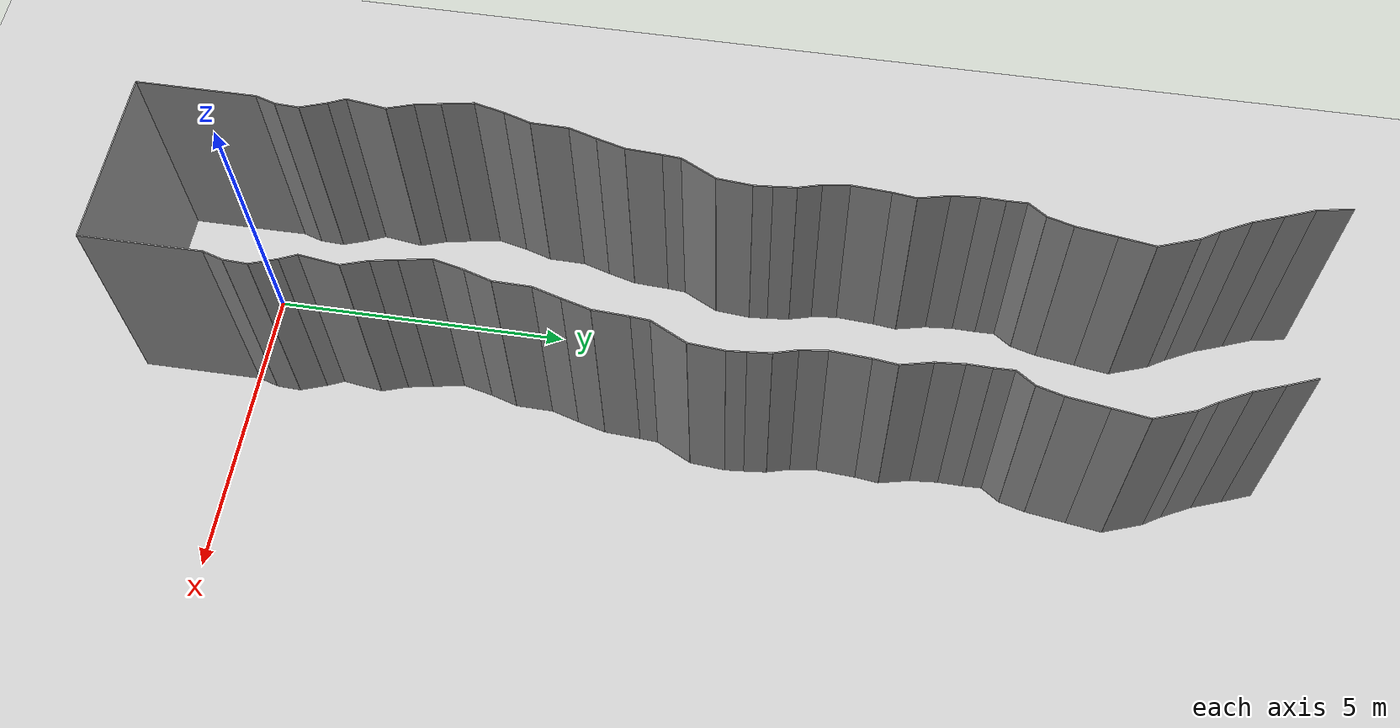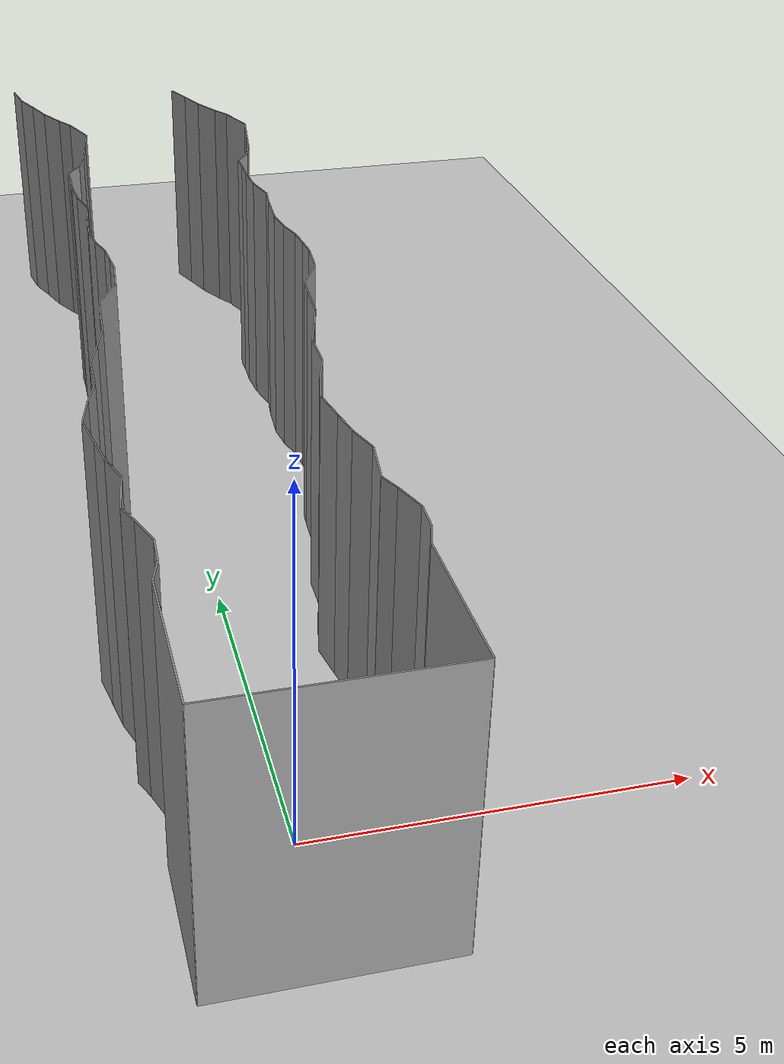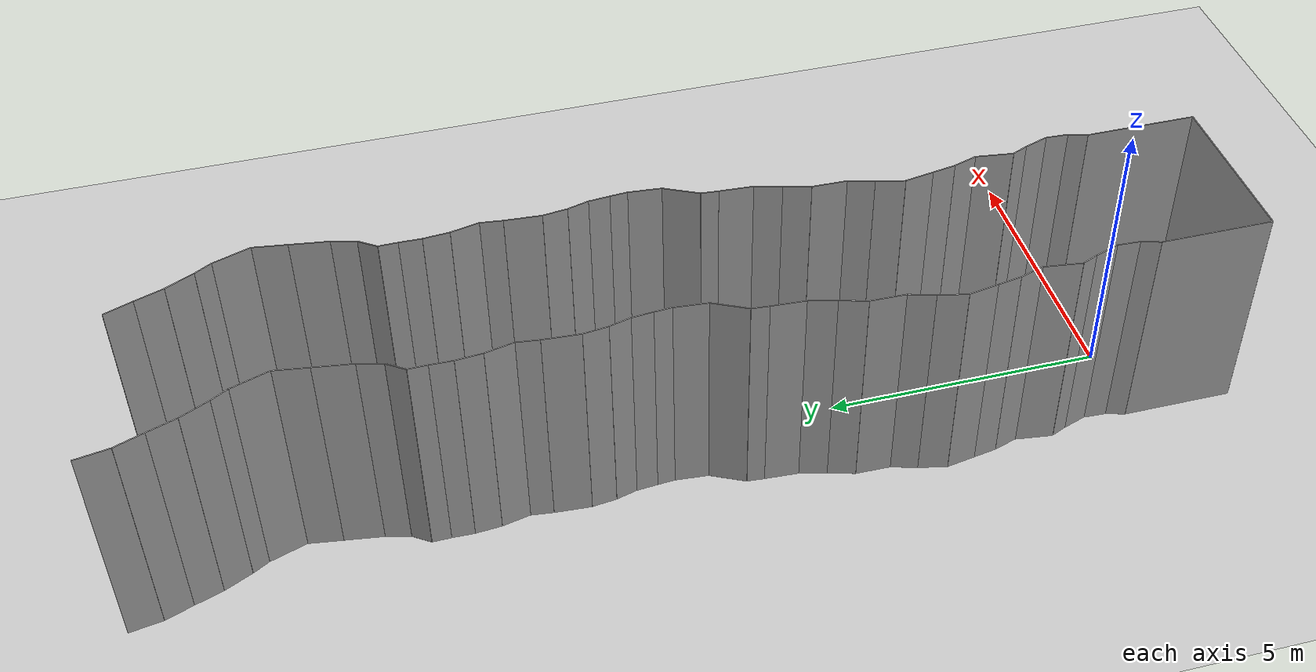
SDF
<sdf version="1.6">
 <world name="default">
  <model name="ground_plane">
   <static>1</static>
   <link name="link">
    <collision name="collision">
     <geometry><plane><normal>0 0 1</normal><size>200 200</size></plane></geometry>
     <surface><friction><ode><mu>100</mu><mu2>50</mu2></ode></friction></surface>
    </collision>
    <visual name="visual">
     <cast_shadows>0</cast_shadows>
     <geometry><plane><normal>0 0 1</normal><size>200 200</size></plane></geometry>
     <material>
      <script><uri>file://media/materials/scripts/gazebo.material</uri><name>Gazebo/Grey</name></script>
     </material>
    </visual>
   </link>
   <pose>0 100 0 0 -0 0</pose>
  </model>
  <model name="wall_back">
   <static>1</static>
   <pose>0.0 -2 2 0.0 0 0.0</pose>
   <link name="link">
    <collision name="collision"><geometry><box><size>3 0.02 4</size></box></geometry></collision>
    <visual name="visual">
     <material>
      <script><name>Gazebo/Grey</name><uri>file://media/materials/scripts/gazebo.material</uri></script>
     </material>
     <geometry><box><size>3 0.02 4</size></box></geometry>
    </visual>
   </link>
  </model>
  <model name="wall_left">
   <static>1</static>
   <pose>1.5 -1 2 0 0 0.00</pose>
   <link name="link">
    <collision name="collision"><geometry><box><size>0.02 2 4</size></box></geometry></collision>
    <visual name="visual">
     <material>
      <script><name>Gazebo/Grey</name><uri>file://media/materials/scripts/gazebo.material</uri></script>
     </material>
     <geometry><box><size>0.02 2 4</size></box></geometry>
    </visual>
   </link>
  </model>
  <model name="wall_right">
   <static>1</static>
   <pose>-1.5 -1 2 0 0 0.00</pose>
   <link name="link">
    <collision name="collision"><geometry><box><size>0.02 2 4</size></box></geometry></collision>
    <visual name="visual">
     <material>
      <script><name>Gazebo/Grey</name><uri>file://media/materials/scripts/gazebo.material</uri></script>
     </material>
     <geometry><box><size>0.02 2 4</size></box></geometry>
    </visual>
   </link>
  </model>
  <model name="wall_0">
   <static>1</static>
   <pose>-1.4481622839149968 0.16780448735554085 2 0 0 -0.2996176306300844</pose>
   <link name="link">
    <collision name="collision"><geometry><box><size>0.02 0.351257710438 4</size></box></geometry></collision>
    <visual name="visual">
     <material>
      <script><name>Gazebo/Grey</name><uri>file://media/materials/scripts/gazebo.material</uri></script>
     </material>
     <geometry><box><size>0.02 0.351257710438 4</size></box></geometry>
    </visual>
   </link>
  </model>
  <model name="wall_1">
   <static>1</static>
   <pose>1.5518377160850032 0.16780448735554085 2 0 0 -0.2996176306300844</pose>
   <link name="link">
    <collision name="collision"><geometry><box><size>0.02 0.351257710438 4</size></box></geometry></collision>
    <visual name="visual">
     <material>
      <script><name>Gazebo/Grey</name><uri>file://media/materials/scripts/gazebo.material</uri></script>
     </material>
     <geometry><box><size>0.02 0.351257710438 4</size></box></geometry>
    </visual>
   </link>
  </model>
  <model name="wall_2">
   <static>1</static>
   <pose>-1.3870722859414883 0.5377165227331161 2 0 0 -0.04574706242207418</pose>
   <link name="link">
    <collision name="collision"><geometry><box><size>0.02 0.404638434594 4</size></box></geometry></collision>
    <visual name="visual">
     <material>
      <script><name>Gazebo/Grey</name><uri>file://media/materials/scripts/gazebo.material</uri></script>
     </material>
     <geometry><box><size>0.02 0.404638434594 4</size></box></geometry>
    </visual>
   </link>
  </model>
  <model name="wall_3">
   <static>1</static>
   <pose>1.6129277140585117 0.5377165227331161 2 0 0 -0.04574706242207418</pose>
   <link name="link">
    <collision name="collision"><geometry><box><size>0.02 0.404638434594 4</size></box></geometry></collision>
    <visual name="visual">
     <material>
      <script><name>Gazebo/Grey</name><uri>file://media/materials/scripts/gazebo.material</uri></script>
     </material>
     <geometry><box><size>0.02 0.404638434594 4</size></box></geometry>
    </visual>
   </link>
  </model>
  <model name="wall_4">
   <static>1</static>
   <pose>-1.4535573798969859 0.957338803147812 2 0 0 0.3350652151539047</pose>
   <link name="link">
    <collision name="collision"><geometry><box><size>0.02 0.460646540886 4</size></box></geometry></collision>
    <visual name="visual">
     <material>
      <script><name>Gazebo/Grey</name><uri>file://media/materials/scripts/gazebo.material</uri></script>
     </material>
     <geometry><box><size>0.02 0.460646540886 4</size></box></geometry>
    </visual>
   </link>
  </model>
  <model name="wall_5">
   <static>1</static>
   <pose>1.5464426201030141 0.957338803147812 2 0 0 0.3350652151539047</pose>
   <link name="link">
    <collision name="collision"><geometry><box><size>0.02 0.460646540886 4</size></box></geometry></collision>
    <visual name="visual">
     <material>
      <script><name>Gazebo/Grey</name><uri>file://media/materials/scripts/gazebo.material</uri></script>
     </material>
     <geometry><box><size>0.02 0.460646540886 4</size></box></geometry>
    </visual>
   </link>
  </model>
  <model name="wall_6">
   <static>1</static>
   <pose>-1.5897839429528429 1.3142092592086596 2 0 0 0.40952212110997904</pose>
   <link name="link">
    <collision name="collision"><geometry><box><size>0.02 0.303835215132 4</size></box></geometry></collision>
    <visual name="visual">
     <material>
      <script><name>Gazebo/Grey</name><uri>file://media/materials/scripts/gazebo.material</uri></script>
     </material>
     <geometry><box><size>0.02 0.303835215132 4</size></box></geometry>
    </visual>
   </link>
  </model>
  <model name="wall_7">
   <static>1</static>
   <pose>1.4102160570471571 1.3142092592086596 2 0 0 0.40952212110997904</pose>
   <link name="link">
    <collision name="collision"><geometry><box><size>0.02 0.303835215132 4</size></box></geometry></collision>
    <visual name="visual">
     <material>
      <script><name>Gazebo/Grey</name><uri>file://media/materials/scripts/gazebo.material</uri></script>
     </material>
     <geometry><box><size>0.02 0.303835215132 4</size></box></geometry>
    </visual>
   </link>
  </model>
  <model name="wall_8">
   <static>1</static>
   <pose>-1.6051637080612953 1.7888121610234917 2 0 0 -0.13375236459684292</pose>
   <link name="link">
    <collision name="collision"><geometry><box><size>0.02 0.676536859063 4</size></box></geometry></collision>
    <visual name="visual">
     <material>
      <script><name>Gazebo/Grey</name><uri>file://media/materials/scripts/gazebo.material</uri></script>
     </material>
     <geometry><box><size>0.02 0.676536859063 4</size></box></geometry>
    </visual>
   </link>
  </model>
  <model name="wall_9">
   <static>1</static>
   <pose>1.3948362919387047 1.7888121610234917 2 0 0 -0.13375236459684292</pose>
   <link name="link">
    <collision name="collision"><geometry><box><size>0.02 0.676536859063 4</size></box></geometry></collision>
    <visual name="visual">
     <material>
      <script><name>Gazebo/Grey</name><uri>file://media/materials/scripts/gazebo.material</uri></script>
     </material>
     <geometry><box><size>0.02 0.676536859063 4</size></box></geometry>
    </visual>
   </link>
  </model>
  <model name="wall_10">
   <static>1</static>
   <pose>-1.629949193590575 2.340224699110677 2 0 0 0.31272975462631525</pose>
   <link name="link">
    <collision name="collision"><geometry><box><size>0.02 0.454368841147 4</size></box></geometry></collision>
    <visual name="visual">
     <material>
      <script><name>Gazebo/Grey</name><uri>file://media/materials/scripts/gazebo.material</uri></script>
     </material>
     <geometry><box><size>0.02 0.454368841147 4</size></box></geometry>
    </visual>
   </link>
  </model>
  <model name="wall_11">
   <static>1</static>
   <pose>1.370050806409425 2.340224699110677 2 0 0 0.31272975462631525</pose>
   <link name="link">
    <collision name="collision"><geometry><box><size>0.02 0.454368841147 4</size></box></geometry></collision>
    <visual name="visual">
     <material>
      <script><name>Gazebo/Grey</name><uri>file://media/materials/scripts/gazebo.material</uri></script>
     </material>
     <geometry><box><size>0.02 0.454368841147 4</size></box></geometry>
    </visual>
   </link>
  </model>
  <model name="wall_12">
   <static>1</static>
   <pose>-1.7378465911245706 2.7684076442439713 2 0 0 0.17735878467038635</pose>
   <link name="link">
    <collision name="collision"><geometry><box><size>0.02 0.430792969625 4</size></box></geometry></collision>
    <visual name="visual">
     <material>
      <script><name>Gazebo/Grey</name><uri>file://media/materials/scripts/gazebo.material</uri></script>
     </material>
     <geometry><box><size>0.02 0.430792969625 4</size></box></geometry>
    </visual>
   </link>
  </model>
  <model name="wall_13">
   <static>1</static>
   <pose>1.2621534088754294 2.7684076442439713 2 0 0 0.17735878467038635</pose>
   <link name="link">
    <collision name="collision"><geometry><box><size>0.02 0.430792969625 4</size></box></geometry></collision>
    <visual name="visual">
     <material>
      <script><name>Gazebo/Grey</name><uri>file://media/materials/scripts/gazebo.material</uri></script>
     </material>
     <geometry><box><size>0.02 0.430792969625 4</size></box></geometry>
    </visual>
   </link>
  </model>
  <model name="wall_14">
   <static>1</static>
   <pose>-1.8222864125030118 3.2431577242561613 2 0 0 0.17494080819315336</pose>
   <link name="link">
    <collision name="collision"><geometry><box><size>0.02 0.533609556094 4</size></box></geometry></collision>
    <visual name="visual">
     <material>
      <script><name>Gazebo/Grey</name><uri>file://media/materials/scripts/gazebo.material</uri></script>
     </material>
     <geometry><box><size>0.02 0.533609556094 4</size></box></geometry>
    </visual>
   </link>
  </model>
  <model name="wall_15">
   <static>1</static>
   <pose>1.1777135874969882 3.2431577242561613 2 0 0 0.17494080819315336</pose>
   <link name="link">
    <collision name="collision"><geometry><box><size>0.02 0.533609556094 4</size></box></geometry></collision>
    <visual name="visual">
     <material>
      <script><name>Gazebo/Grey</name><uri>file://media/materials/scripts/gazebo.material</uri></script>
     </material>
     <geometry><box><size>0.02 0.533609556094 4</size></box></geometry>
    </visual>
   </link>
  </model>
  <model name="wall_16">
   <static>1</static>
   <pose>-1.8098432747060365 3.759715212513066 2 0 0 -0.22794116683022206</pose>
   <link name="link">
    <collision name="collision"><geometry><box><size>0.02 0.521129684265 4</size></box></geometry></collision>
    <visual name="visual">
     <material>
      <script><name>Gazebo/Grey</name><uri>file://media/materials/scripts/gazebo.material</uri></script>
     </material>
     <geometry><box><size>0.02 0.521129684265 4</size></box></geometry>
    </visual>
   </link>
  </model>
  <model name="wall_17">
   <static>1</static>
   <pose>1.1901567252939635 3.759715212513066 2 0 0 -0.22794116683022206</pose>
   <link name="link">
    <collision name="collision"><geometry><box><size>0.02 0.521129684265 4</size></box></geometry></collision>
    <visual name="visual">
     <material>
      <script><name>Gazebo/Grey</name><uri>file://media/materials/scripts/gazebo.material</uri></script>
     </material>
     <geometry><box><size>0.02 0.521129684265 4</size></box></geometry>
    </visual>
   </link>
  </model>
  <model name="wall_18">
   <static>1</static>
   <pose>-1.6812586192126178 4.24109299192364 2 0 0 -0.2972456979733456</pose>
   <link name="link">
    <collision name="collision"><geometry><box><size>0.02 0.475978755747 4</size></box></geometry></collision>
    <visual name="visual">
     <material>
      <script><name>Gazebo/Grey</name><uri>file://media/materials/scripts/gazebo.material</uri></script>
     </material>
     <geometry><box><size>0.02 0.475978755747 4</size></box></geometry>
    </visual>
   </link>
  </model>
  <model name="wall_19">
   <static>1</static>
   <pose>1.3187413807873822 4.24109299192364 2 0 0 -0.2972456979733456</pose>
   <link name="link">
    <collision name="collision"><geometry><box><size>0.02 0.475978755747 4</size></box></geometry></collision>
    <visual name="visual">
     <material>
      <script><name>Gazebo/Grey</name><uri>file://media/materials/scripts/gazebo.material</uri></script>
     </material>
     <geometry><box><size>0.02 0.475978755747 4</size></box></geometry>
    </visual>
   </link>
  </model>
  <model name="wall_20">
   <static>1</static>
   <pose>-1.6062313466750713 4.781938812023397 2 0 0 -0.016989123899581415</pose>
   <link name="link">
    <collision name="collision"><geometry><box><size>0.02 0.626676505002 4</size></box></geometry></collision>
    <visual name="visual">
     <material>
      <script><name>Gazebo/Grey</name><uri>file://media/materials/scripts/gazebo.material</uri></script>
     </material>
     <geometry><box><size>0.02 0.626676505002 4</size></box></geometry>
    </visual>
   </link>
  </model>
  <model name="wall_21">
   <static>1</static>
   <pose>1.3937686533249287 4.781938812023397 2 0 0 -0.016989123899581415</pose>
   <link name="link">
    <collision name="collision"><geometry><box><size>0.02 0.626676505002 4</size></box></geometry></collision>
    <visual name="visual">
     <material>
      <script><name>Gazebo/Grey</name><uri>file://media/materials/scripts/gazebo.material</uri></script>
     </material>
     <geometry><box><size>0.02 0.626676505002 4</size></box></geometry>
    </visual>
   </link>
  </model>
  <model name="wall_22">
   <static>1</static>
   <pose>-1.531143853054476 5.331211188134195 2 0 0 -0.2874499627608402</pose>
   <link name="link">
    <collision name="collision"><geometry><box><size>0.02 0.492151693564 4</size></box></geometry></collision>
    <visual name="visual">
     <material>
      <script><name>Gazebo/Grey</name><uri>file://media/materials/scripts/gazebo.material</uri></script>
     </material>
     <geometry><box><size>0.02 0.492151693564 4</size></box></geometry>
    </visual>
   </link>
  </model>
  <model name="wall_23">
   <static>1</static>
   <pose>1.468856146945524 5.331211188134195 2 0 0 -0.2874499627608402</pose>
   <link name="link">
    <collision name="collision"><geometry><box><size>0.02 0.492151693564 4</size></box></geometry></collision>
    <visual name="visual">
     <material>
      <script><name>Gazebo/Grey</name><uri>file://media/materials/scripts/gazebo.material</uri></script>
     </material>
     <geometry><box><size>0.02 0.492151693564 4</size></box></geometry>
    </visual>
   </link>
  </model>
  <model name="wall_24">
   <static>1</static>
   <pose>-1.3978538515136698 5.806062423311456 2 0 0 -0.2599238574407666</pose>
   <link name="link">
    <collision name="collision"><geometry><box><size>0.02 0.494349198365 4</size></box></geometry></collision>
    <visual name="visual">
     <material>
      <script><name>Gazebo/Grey</name><uri>file://media/materials/scripts/gazebo.material</uri></script>
     </material>
     <geometry><box><size>0.02 0.494349198365 4</size></box></geometry>
    </visual>
   </link>
  </model>
  <model name="wall_25">
   <static>1</static>
   <pose>1.6021461484863302 5.806062423311456 2 0 0 -0.2599238574407666</pose>
   <link name="link">
    <collision name="collision"><geometry><box><size>0.02 0.494349198365 4</size></box></geometry></collision>
    <visual name="visual">
     <material>
      <script><name>Gazebo/Grey</name><uri>file://media/materials/scripts/gazebo.material</uri></script>
     </material>
     <geometry><box><size>0.02 0.494349198365 4</size></box></geometry>
    </visual>
   </link>
  </model>
  <model name="wall_26">
   <static>1</static>
   <pose>-1.31751898315386 6.3476481189334155 2 0 0 -0.055471634144057064</pose>
   <link name="link">
    <collision name="collision"><geometry><box><size>0.02 0.606360281936 4</size></box></geometry></collision>
    <visual name="visual">
     <material>
      <script><name>Gazebo/Grey</name><uri>file://media/materials/scripts/gazebo.material</uri></script>
     </material>
     <geometry><box><size>0.02 0.606360281936 4</size></box></geometry>
    </visual>
   </link>
  </model>
  <model name="wall_27">
   <static>1</static>
   <pose>1.68248101684614 6.3476481189334155 2 0 0 -0.055471634144057064</pose>
   <link name="link">
    <collision name="collision"><geometry><box><size>0.02 0.606360281936 4</size></box></geometry></collision>
    <visual name="visual">
     <material>
      <script><name>Gazebo/Grey</name><uri>file://media/materials/scripts/gazebo.material</uri></script>
     </material>
     <geometry><box><size>0.02 0.606360281936 4</size></box></geometry>
    </visual>
   </link>
  </model>
  <model name="wall_28">
   <static>1</static>
   <pose>-1.2881279518696167 6.8042923105226505 2 0 0 -0.0815553701330542</pose>
   <link name="link">
    <collision name="collision"><geometry><box><size>0.02 0.308887457307 4</size></box></geometry></collision>
    <visual name="visual">
     <material>
      <script><name>Gazebo/Grey</name><uri>file://media/materials/scripts/gazebo.material</uri></script>
     </material>
     <geometry><box><size>0.02 0.308887457307 4</size></box></geometry>
    </visual>
   </link>
  </model>
  <model name="wall_29">
   <static>1</static>
   <pose>1.7118720481303833 6.8042923105226505 2 0 0 -0.0815553701330542</pose>
   <link name="link">
    <collision name="collision"><geometry><box><size>0.02 0.308887457307 4</size></box></geometry></collision>
    <visual name="visual">
     <material>
      <script><name>Gazebo/Grey</name><uri>file://media/materials/scripts/gazebo.material</uri></script>
     </material>
     <geometry><box><size>0.02 0.308887457307 4</size></box></geometry>
    </visual>
   </link>
  </model>
  <model name="wall_30">
   <static>1</static>
   <pose>-1.1243460190447574 7.256403919228563 2 0 0 -0.46929139976647033</pose>
   <link name="link">
    <collision name="collision"><geometry><box><size>0.02 0.668650978642 4</size></box></geometry></collision>
    <visual name="visual">
     <material>
      <script><name>Gazebo/Grey</name><uri>file://media/materials/scripts/gazebo.material</uri></script>
     </material>
     <geometry><box><size>0.02 0.668650978642 4</size></box></geometry>
    </visual>
   </link>
  </model>
  <model name="wall_31">
   <static>1</static>
   <pose>1.8756539809552426 7.256403919228563 2 0 0 -0.46929139976647033</pose>
   <link name="link">
    <collision name="collision"><geometry><box><size>0.02 0.668650978642 4</size></box></geometry></collision>
    <visual name="visual">
     <material>
      <script><name>Gazebo/Grey</name><uri>file://media/materials/scripts/gazebo.material</uri></script>
     </material>
     <geometry><box><size>0.02 0.668650978642 4</size></box></geometry>
    </visual>
   </link>
  </model>
  <model name="wall_32">
   <static>1</static>
   <pose>-0.9484871968304259 7.850144005878624 2 0 0 -0.08323780323232564</pose>
   <link name="link">
    <collision name="collision"><geometry><box><size>0.02 0.593171451686 4</size></box></geometry></collision>
    <visual name="visual">
     <material>
      <script><name>Gazebo/Grey</name><uri>file://media/materials/scripts/gazebo.material</uri></script>
     </material>
     <geometry><box><size>0.02 0.593171451686 4</size></box></geometry>
    </visual>
   </link>
  </model>
  <model name="wall_33">
   <static>1</static>
   <pose>2.051512803169574 7.850144005878624 2 0 0 -0.08323780323232564</pose>
   <link name="link">
    <collision name="collision"><geometry><box><size>0.02 0.593171451686 4</size></box></geometry></collision>
    <visual name="visual">
     <material>
      <script><name>Gazebo/Grey</name><uri>file://media/materials/scripts/gazebo.material</uri></script>
     </material>
     <geometry><box><size>0.02 0.593171451686 4</size></box></geometry>
    </visual>
   </link>
  </model>
  <model name="wall_34">
   <static>1</static>
   <pose>-0.9362844113599068 8.302646553862616 2 0 0 0.07919915577153401</pose>
   <link name="link">
    <collision name="collision"><geometry><box><size>0.02 0.314874371414 4</size></box></geometry></collision>
    <visual name="visual">
     <material>
      <script><name>Gazebo/Grey</name><uri>file://media/materials/scripts/gazebo.material</uri></script>
     </material>
     <geometry><box><size>0.02 0.314874371414 4</size></box></geometry>
    </visual>
   </link>
  </model>
  <model name="wall_35">
   <static>1</static>
   <pose>2.0637155886400933 8.302646553862616 2 0 0 0.07919915577153401</pose>
   <link name="link">
    <collision name="collision"><geometry><box><size>0.02 0.314874371414 4</size></box></geometry></collision>
    <visual name="visual">
     <material>
      <script><name>Gazebo/Grey</name><uri>file://media/materials/scripts/gazebo.material</uri></script>
     </material>
     <geometry><box><size>0.02 0.314874371414 4</size></box></geometry>
    </visual>
   </link>
  </model>
  <model name="wall_36">
   <static>1</static>
   <pose>-0.9666049596987792 8.648240813692897 2 0 0 0.09441567546334409</pose>
   <link name="link">
    <collision name="collision"><geometry><box><size>0.02 0.378989118521 4</size></box></geometry></collision>
    <visual name="visual">
     <material>
      <script><name>Gazebo/Grey</name><uri>file://media/materials/scripts/gazebo.material</uri></script>
     </material>
     <geometry><box><size>0.02 0.378989118521 4</size></box></geometry>
    </visual>
   </link>
  </model>
  <model name="wall_37">
   <static>1</static>
   <pose>2.0333950403012206 8.648240813692897 2 0 0 0.09441567546334409</pose>
   <link name="link">
    <collision name="collision"><geometry><box><size>0.02 0.378989118521 4</size></box></geometry></collision>
    <visual name="visual">
     <material>
      <script><name>Gazebo/Grey</name><uri>file://media/materials/scripts/gazebo.material</uri></script>
     </material>
     <geometry><box><size>0.02 0.378989118521 4</size></box></geometry>
    </visual>
   </link>
  </model>
  <model name="wall_38">
   <static>1</static>
   <pose>-1.0373330888710544 9.02675972678839 2 0 0 0.27154443725505956</pose>
   <link name="link">
    <collision name="collision"><geometry><box><size>0.02 0.394180302917 4</size></box></geometry></collision>
    <visual name="visual">
     <material>
      <script><name>Gazebo/Grey</name><uri>file://media/materials/scripts/gazebo.material</uri></script>
     </material>
     <geometry><box><size>0.02 0.394180302917 4</size></box></geometry>
    </visual>
   </link>
  </model>
  <model name="wall_39">
   <static>1</static>
   <pose>1.9626669111289456 9.02675972678839 2 0 0 0.27154443725505956</pose>
   <link name="link">
    <collision name="collision"><geometry><box><size>0.02 0.394180302917 4</size></box></geometry></collision>
    <visual name="visual">
     <material>
      <script><name>Gazebo/Grey</name><uri>file://media/materials/scripts/gazebo.material</uri></script>
     </material>
     <geometry><box><size>0.02 0.394180302917 4</size></box></geometry>
    </visual>
   </link>
  </model>
  <model name="wall_40">
   <static>1</static>
   <pose>-1.1183441626120516 9.435893678911496 2 0 0 0.12767402385074395</pose>
   <link name="link">
    <collision name="collision"><geometry><box><size>0.02 0.442129847013 4</size></box></geometry></collision>
    <visual name="visual">
     <material>
      <script><name>Gazebo/Grey</name><uri>file://media/materials/scripts/gazebo.material</uri></script>
     </material>
     <geometry><box><size>0.02 0.442129847013 4</size></box></geometry>
    </visual>
   </link>
  </model>
  <model name="wall_41">
   <static>1</static>
   <pose>1.8816558373879484 9.435893678911496 2 0 0 0.12767402385074395</pose>
   <link name="link">
    <collision name="collision"><geometry><box><size>0.02 0.442129847013 4</size></box></geometry></collision>
    <visual name="visual">
     <material>
      <script><name>Gazebo/Grey</name><uri>file://media/materials/scripts/gazebo.material</uri></script>
     </material>
     <geometry><box><size>0.02 0.442129847013 4</size></box></geometry>
    </visual>
   </link>
  </model>
  <model name="wall_42">
   <static>1</static>
   <pose>-1.125737672604538 9.982232337623605 2 0 0 -0.06336912984475411</pose>
   <link name="link">
    <collision name="collision"><geometry><box><size>0.02 0.65546169239 4</size></box></geometry></collision>
    <visual name="visual">
     <material>
      <script><name>Gazebo/Grey</name><uri>file://media/materials/scripts/gazebo.material</uri></script>
     </material>
     <geometry><box><size>0.02 0.65546169239 4</size></box></geometry>
    </visual>
   </link>
  </model>
  <model name="wall_43">
   <static>1</static>
   <pose>1.874262327395462 9.982232337623605 2 0 0 -0.06336912984475411</pose>
   <link name="link">
    <collision name="collision"><geometry><box><size>0.02 0.65546169239 4</size></box></geometry></collision>
    <visual name="visual">
     <material>
      <script><name>Gazebo/Grey</name><uri>file://media/materials/scripts/gazebo.material</uri></script>
     </material>
     <geometry><box><size>0.02 0.65546169239 4</size></box></geometry>
    </visual>
   </link>
  </model>
  <model name="wall_44">
   <static>1</static>
   <pose>-1.0807867780076557 10.507442569947084 2 0 0 -0.12151959194990355</pose>
   <link name="link">
    <collision name="collision"><geometry><box><size>0.02 0.399218388871 4</size></box></geometry></collision>
    <visual name="visual">
     <material>
      <script><name>Gazebo/Grey</name><uri>file://media/materials/scripts/gazebo.material</uri></script>
     </material>
     <geometry><box><size>0.02 0.399218388871 4</size></box></geometry>
    </visual>
   </link>
  </model>
  <model name="wall_45">
   <static>1</static>
   <pose>1.9192132219923443 10.507442569947084 2 0 0 -0.12151959194990355</pose>
   <link name="link">
    <collision name="collision"><geometry><box><size>0.02 0.399218388871 4</size></box></geometry></collision>
    <visual name="visual">
     <material>
      <script><name>Gazebo/Grey</name><uri>file://media/materials/scripts/gazebo.material</uri></script>
     </material>
     <geometry><box><size>0.02 0.399218388871 4</size></box></geometry>
    </visual>
   </link>
  </model>
  <model name="wall_46">
   <static>1</static>
   <pose>-1.1150622967381114 10.9606910244499 2 0 0 0.2253113913435937</pose>
   <link name="link">
    <collision name="collision"><geometry><box><size>0.02 0.523453017329 4</size></box></geometry></collision>
    <visual name="visual">
     <material>
      <script><name>Gazebo/Grey</name><uri>file://media/materials/scripts/gazebo.material</uri></script>
     </material>
     <geometry><box><size>0.02 0.523453017329 4</size></box></geometry>
    </visual>
   </link>
  </model>
  <model name="wall_47">
   <static>1</static>
   <pose>1.8849377032618886 10.9606910244499 2 0 0 0.2253113913435937</pose>
   <link name="link">
    <collision name="collision"><geometry><box><size>0.02 0.523453017329 4</size></box></geometry></collision>
    <visual name="visual">
     <material>
      <script><name>Gazebo/Grey</name><uri>file://media/materials/scripts/gazebo.material</uri></script>
     </material>
     <geometry><box><size>0.02 0.523453017329 4</size></box></geometry>
    </visual>
   </link>
  </model>
  <model name="wall_48">
   <static>1</static>
   <pose>-1.1928911129790516 11.448885990914029 2 0 0 0.08285525769127004</pose>
   <link name="link">
    <collision name="collision"><geometry><box><size>0.02 0.467772115079 4</size></box></geometry></collision>
    <visual name="visual">
     <material>
      <script><name>Gazebo/Grey</name><uri>file://media/materials/scripts/gazebo.material</uri></script>
     </material>
     <geometry><box><size>0.02 0.467772115079 4</size></box></geometry>
    </visual>
   </link>
  </model>
  <model name="wall_49">
   <static>1</static>
   <pose>1.8071088870209484 11.448885990914029 2 0 0 0.08285525769127004</pose>
   <link name="link">
    <collision name="collision"><geometry><box><size>0.02 0.467772115079 4</size></box></geometry></collision>
    <visual name="visual">
     <material>
      <script><name>Gazebo/Grey</name><uri>file://media/materials/scripts/gazebo.material</uri></script>
     </material>
     <geometry><box><size>0.02 0.467772115079 4</size></box></geometry>
    </visual>
   </link>
  </model>
  <model name="wall_50">
   <static>1</static>
   <pose>-1.208191218170536 11.881205040745478 2 0 0 -0.02035712674399414</pose>
   <link name="link">
    <collision name="collision"><geometry><box><size>0.02 0.39855327246 4</size></box></geometry></collision>
    <visual name="visual">
     <material>
      <script><name>Gazebo/Grey</name><uri>file://media/materials/scripts/gazebo.material</uri></script>
     </material>
     <geometry><box><size>0.02 0.39855327246 4</size></box></geometry>
    </visual>
   </link>
  </model>
  <model name="wall_51">
   <static>1</static>
   <pose>1.791808781829464 11.881205040745478 2 0 0 -0.02035712674399414</pose>
   <link name="link">
    <collision name="collision"><geometry><box><size>0.02 0.39855327246 4</size></box></geometry></collision>
    <visual name="visual">
     <material>
      <script><name>Gazebo/Grey</name><uri>file://media/materials/scripts/gazebo.material</uri></script>
     </material>
     <geometry><box><size>0.02 0.39855327246 4</size></box></geometry>
    </visual>
   </link>
  </model>
  <model name="wall_52">
   <static>1</static>
   <pose>-1.2072234631017604 12.246882023853656 2 0 0 0.018554912564470328</pose>
   <link name="link">
    <collision name="collision"><geometry><box><size>0.02 0.3329405852 4</size></box></geometry></collision>
    <visual name="visual">
     <material>
      <script><name>Gazebo/Grey</name><uri>file://media/materials/scripts/gazebo.material</uri></script>
     </material>
     <geometry><box><size>0.02 0.3329405852 4</size></box></geometry>
    </visual>
   </link>
  </model>
  <model name="wall_53">
   <static>1</static>
   <pose>1.7927765368982396 12.246882023853656 2 0 0 0.018554912564470328</pose>
   <link name="link">
    <collision name="collision"><geometry><box><size>0.02 0.3329405852 4</size></box></geometry></collision>
    <visual name="visual">
     <material>
      <script><name>Gazebo/Grey</name><uri>file://media/materials/scripts/gazebo.material</uri></script>
     </material>
     <geometry><box><size>0.02 0.3329405852 4</size></box></geometry>
    </visual>
   </link>
  </model>
  <model name="wall_54">
   <static>1</static>
   <pose>-1.1042760674856207 12.56503613000004 2 0 0 -0.6100059943093987</pose>
   <link name="link">
    <collision name="collision"><geometry><box><size>0.02 0.370190866386 4</size></box></geometry></collision>
    <visual name="visual">
     <material>
      <script><name>Gazebo/Grey</name><uri>file://media/materials/scripts/gazebo.material</uri></script>
     </material>
     <geometry><box><size>0.02 0.370190866386 4</size></box></geometry>
    </visual>
   </link>
  </model>
  <model name="wall_55">
   <static>1</static>
   <pose>1.8957239325143793 12.56503613000004 2 0 0 -0.6100059943093987</pose>
   <link name="link">
    <collision name="collision"><geometry><box><size>0.02 0.370190866386 4</size></box></geometry></collision>
    <visual name="visual">
     <material>
      <script><name>Gazebo/Grey</name><uri>file://media/materials/scripts/gazebo.material</uri></script>
     </material>
     <geometry><box><size>0.02 0.370190866386 4</size></box></geometry>
    </visual>
   </link>
  </model>
  <model name="wall_56">
   <static>1</static>
   <pose>-0.9397064069056849 12.932126643532035 2 0 0 -0.2653621705661002</pose>
   <link name="link">
    <collision name="collision"><geometry><box><size>0.02 0.446380484851 4</size></box></geometry></collision>
    <visual name="visual">
     <material>
      <script><name>Gazebo/Grey</name><uri>file://media/materials/scripts/gazebo.material</uri></script>
     </material>
     <geometry><box><size>0.02 0.446380484851 4</size></box></geometry>
    </visual>
   </link>
  </model>
  <model name="wall_57">
   <static>1</static>
   <pose>2.060293593094315 12.932126643532035 2 0 0 -0.2653621705661002</pose>
   <link name="link">
    <collision name="collision"><geometry><box><size>0.02 0.446380484851 4</size></box></geometry></collision>
    <visual name="visual">
     <material>
      <script><name>Gazebo/Grey</name><uri>file://media/materials/scripts/gazebo.material</uri></script>
     </material>
     <geometry><box><size>0.02 0.446380484851 4</size></box></geometry>
    </visual>
   </link>
  </model>
  <model name="wall_58">
   <static>1</static>
   <pose>-0.8318482900212258 13.485929932124142 2 0 0 -0.14472811307809</pose>
   <link name="link">
    <collision name="collision"><geometry><box><size>0.02 0.684001619739 4</size></box></geometry></collision>
    <visual name="visual">
     <material>
      <script><name>Gazebo/Grey</name><uri>file://media/materials/scripts/gazebo.material</uri></script>
     </material>
     <geometry><box><size>0.02 0.684001619739 4</size></box></geometry>
    </visual>
   </link>
  </model>
  <model name="wall_59">
   <static>1</static>
   <pose>2.1681517099787744 13.485929932124142 2 0 0 -0.14472811307809</pose>
   <link name="link">
    <collision name="collision"><geometry><box><size>0.02 0.684001619739 4</size></box></geometry></collision>
    <visual name="visual">
     <material>
      <script><name>Gazebo/Grey</name><uri>file://media/materials/scripts/gazebo.material</uri></script>
     </material>
     <geometry><box><size>0.02 0.684001619739 4</size></box></geometry>
    </visual>
   </link>
  </model>
  <model name="wall_60">
   <static>1</static>
   <pose>-0.7390169700668391 14.12154388235925 2 0 0 -0.14536197285969535</pose>
   <link name="link">
    <collision name="collision"><geometry><box><size>0.02 0.600712806068 4</size></box></geometry></collision>
    <visual name="visual">
     <material>
      <script><name>Gazebo/Grey</name><uri>file://media/materials/scripts/gazebo.material</uri></script>
     </material>
     <geometry><box><size>0.02 0.600712806068 4</size></box></geometry>
    </visual>
   </link>
  </model>
  <model name="wall_61">
   <static>1</static>
   <pose>2.260983029933161 14.12154388235925 2 0 0 -0.14536197285969535</pose>
   <link name="link">
    <collision name="collision"><geometry><box><size>0.02 0.600712806068 4</size></box></geometry></collision>
    <visual name="visual">
     <material>
      <script><name>Gazebo/Grey</name><uri>file://media/materials/scripts/gazebo.material</uri></script>
     </material>
     <geometry><box><size>0.02 0.600712806068 4</size></box></geometry>
    </visual>
   </link>
  </model>
  <model name="wall_62">
   <static>1</static>
   <pose>-0.8118996984164512 14.747489583500007 2 0 0 0.3402596685851604</pose>
   <link name="link">
    <collision name="collision"><geometry><box><size>0.02 0.69750321887 4</size></box></geometry></collision>
    <visual name="visual">
     <material>
      <script><name>Gazebo/Grey</name><uri>file://media/materials/scripts/gazebo.material</uri></script>
     </material>
     <geometry><box><size>0.02 0.69750321887 4</size></box></geometry>
    </visual>
   </link>
  </model>
  <model name="wall_63">
   <static>1</static>
   <pose>2.1881003015835487 14.747489583500007 2 0 0 0.3402596685851604</pose>
   <link name="link">
    <collision name="collision"><geometry><box><size>0.02 0.69750321887 4</size></box></geometry></collision>
    <visual name="visual">
     <material>
      <script><name>Gazebo/Grey</name><uri>file://media/materials/scripts/gazebo.material</uri></script>
     </material>
     <geometry><box><size>0.02 0.69750321887 4</size></box></geometry>
    </visual>
   </link>
  </model>
  <model name="wall_64">
   <static>1</static>
   <pose>-1.0164430715528123 15.221188934079931 2 0 0 0.5464266062400854</pose>
   <link name="link">
    <collision name="collision"><geometry><box><size>0.02 0.339289764561 4</size></box></geometry></collision>
    <visual name="visual">
     <material>
      <script><name>Gazebo/Grey</name><uri>file://media/materials/scripts/gazebo.material</uri></script>
     </material>
     <geometry><box><size>0.02 0.339289764561 4</size></box></geometry>
    </visual>
   </link>
  </model>
  <model name="wall_65">
   <static>1</static>
   <pose>1.9835569284471877 15.221188934079931 2 0 0 0.5464266062400854</pose>
   <link name="link">
    <collision name="collision"><geometry><box><size>0.02 0.339289764561 4</size></box></geometry></collision>
    <visual name="visual">
     <material>
      <script><name>Gazebo/Grey</name><uri>file://media/materials/scripts/gazebo.material</uri></script>
     </material>
     <geometry><box><size>0.02 0.339289764561 4</size></box></geometry>
    </visual>
   </link>
  </model>
  <model name="wall_66">
   <static>1</static>
   <pose>-1.2282635963553432 15.610428997550057 2 0 0 0.46860567202167186</pose>
   <link name="link">
    <collision name="collision"><geometry><box><size>0.02 0.5476306012 4</size></box></geometry></collision>
    <visual name="visual">
     <material>
      <script><name>Gazebo/Grey</name><uri>file://media/materials/scripts/gazebo.material</uri></script>
     </material>
     <geometry><box><size>0.02 0.5476306012 4</size></box></geometry>
    </visual>
   </link>
  </model>
  <model name="wall_67">
   <static>1</static>
   <pose>1.7717364036446568 15.610428997550057 2 0 0 0.46860567202167186</pose>
   <link name="link">
    <collision name="collision"><geometry><box><size>0.02 0.5476306012 4</size></box></geometry></collision>
    <visual name="visual">
     <material>
      <script><name>Gazebo/Grey</name><uri>file://media/materials/scripts/gazebo.material</uri></script>
     </material>
     <geometry><box><size>0.02 0.5476306012 4</size></box></geometry>
    </visual>
   </link>
  </model>
  <model name="wall_68">
   <static>1</static>
   <pose>-1.4414523322096484 16.101758550467835 2 0 0 0.3476704117823307</pose>
   <link name="link">
    <collision name="collision"><geometry><box><size>0.02 0.525505205164 4</size></box></geometry></collision>
    <visual name="visual">
     <material>
      <script><name>Gazebo/Grey</name><uri>file://media/materials/scripts/gazebo.material</uri></script>
     </material>
     <geometry><box><size>0.02 0.525505205164 4</size></box></geometry>
    </visual>
   </link>
  </model>
  <model name="wall_69">
   <static>1</static>
   <pose>1.5585476677903516 16.101758550467835 2 0 0 0.3476704117823307</pose>
   <link name="link">
    <collision name="collision"><geometry><box><size>0.02 0.525505205164 4</size></box></geometry></collision>
    <visual name="visual">
     <material>
      <script><name>Gazebo/Grey</name><uri>file://media/materials/scripts/gazebo.material</uri></script>
     </material>
     <geometry><box><size>0.02 0.525505205164 4</size></box></geometry>
    </visual>
   </link>
  </model>
  <model name="wall_70">
   <static>1</static>
   <pose>-1.6259843733317463 16.592851796713802 2 0 0 0.371237261087657</pose>
   <link name="link">
    <collision name="collision"><geometry><box><size>0.02 0.523804794484 4</size></box></geometry></collision>
    <visual name="visual">
     <material>
      <script><name>Gazebo/Grey</name><uri>file://media/materials/scripts/gazebo.material</uri></script>
     </material>
     <geometry><box><size>0.02 0.523804794484 4</size></box></geometry>
    </visual>
   </link>
  </model>
  <model name="wall_71">
   <static>1</static>
   <pose>1.3740156266682537 16.592851796713802 2 0 0 0.371237261087657</pose>
   <link name="link">
    <collision name="collision"><geometry><box><size>0.02 0.523804794484 4</size></box></geometry></collision>
    <visual name="visual">
     <material>
      <script><name>Gazebo/Grey</name><uri>file://media/materials/scripts/gazebo.material</uri></script>
     </material>
     <geometry><box><size>0.02 0.523804794484 4</size></box></geometry>
    </visual>
   </link>
  </model>
  <model name="wall_72">
   <static>1</static>
   <pose>-1.772603717466998 17.128168511089463 2 0 0 0.17537587751921788</pose>
   <link name="link">
    <collision name="collision"><geometry><box><size>0.02 0.591584931626 4</size></box></geometry></collision>
    <visual name="visual">
     <material>
      <script><name>Gazebo/Grey</name><uri>file://media/materials/scripts/gazebo.material</uri></script>
     </material>
     <geometry><box><size>0.02 0.591584931626 4</size></box></geometry>
    </visual>
   </link>
  </model>
 </world>
</sdf>
